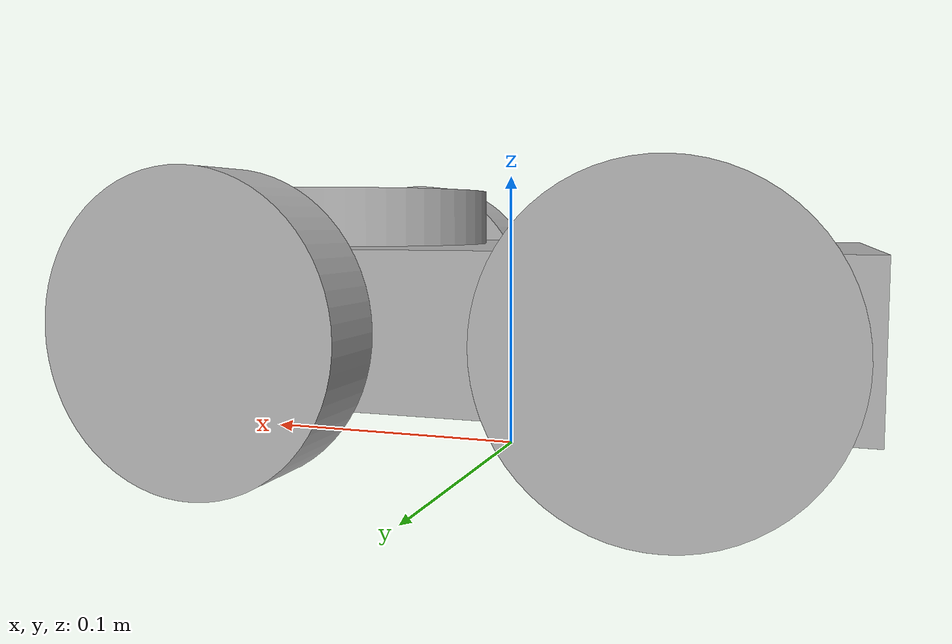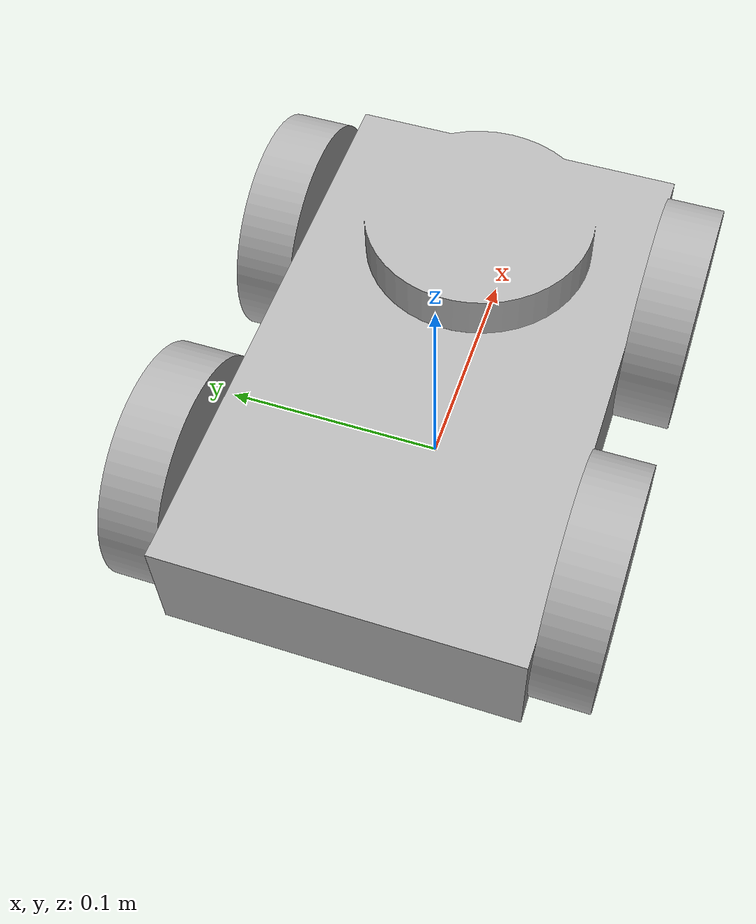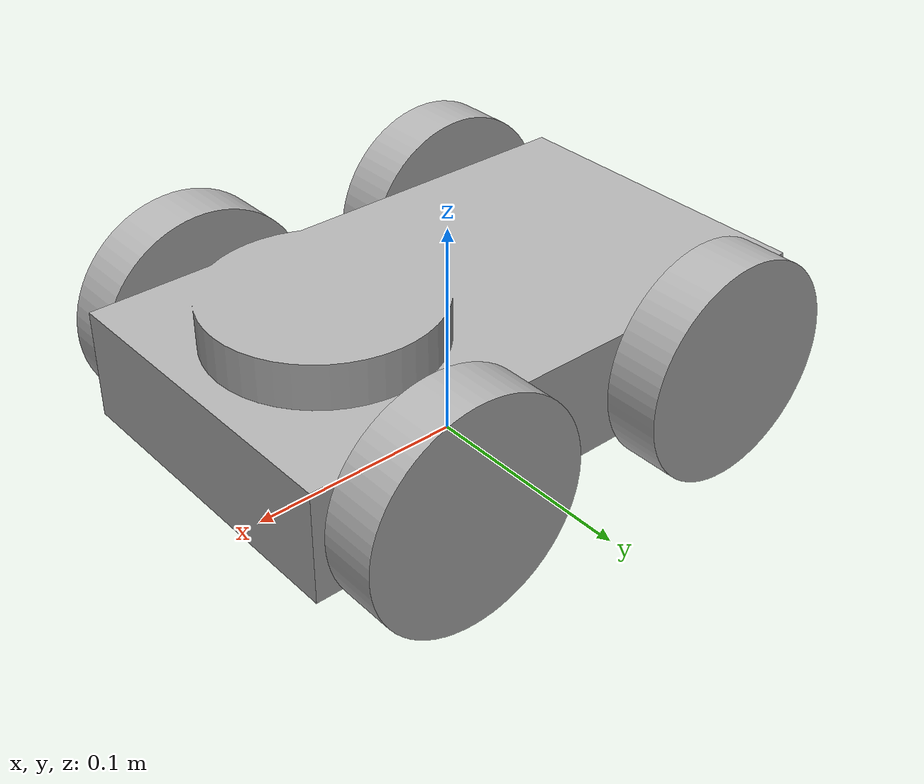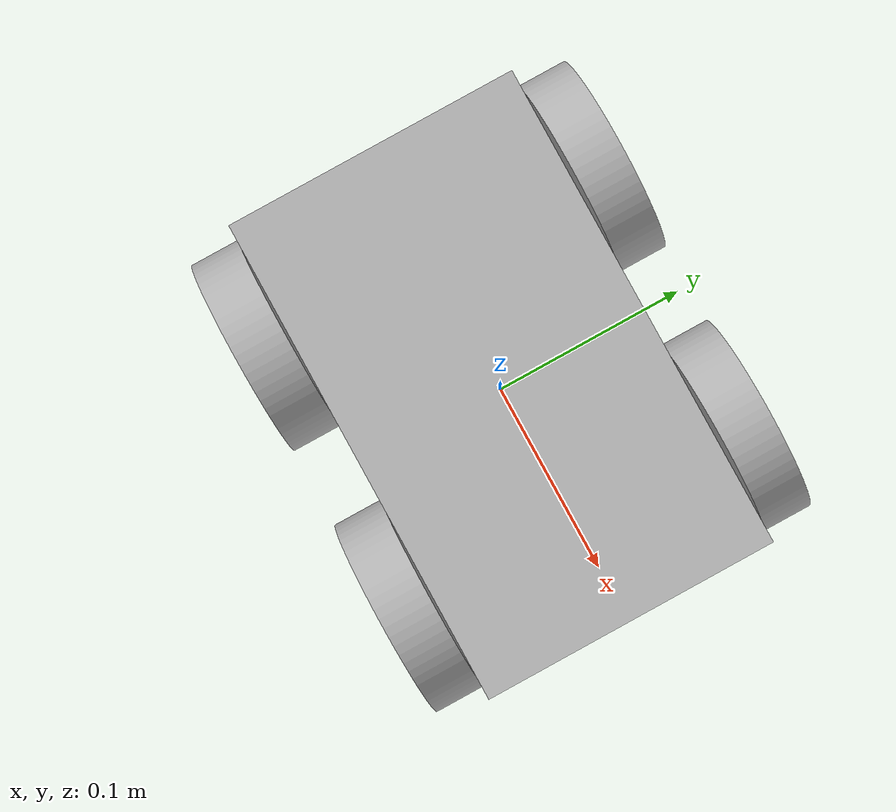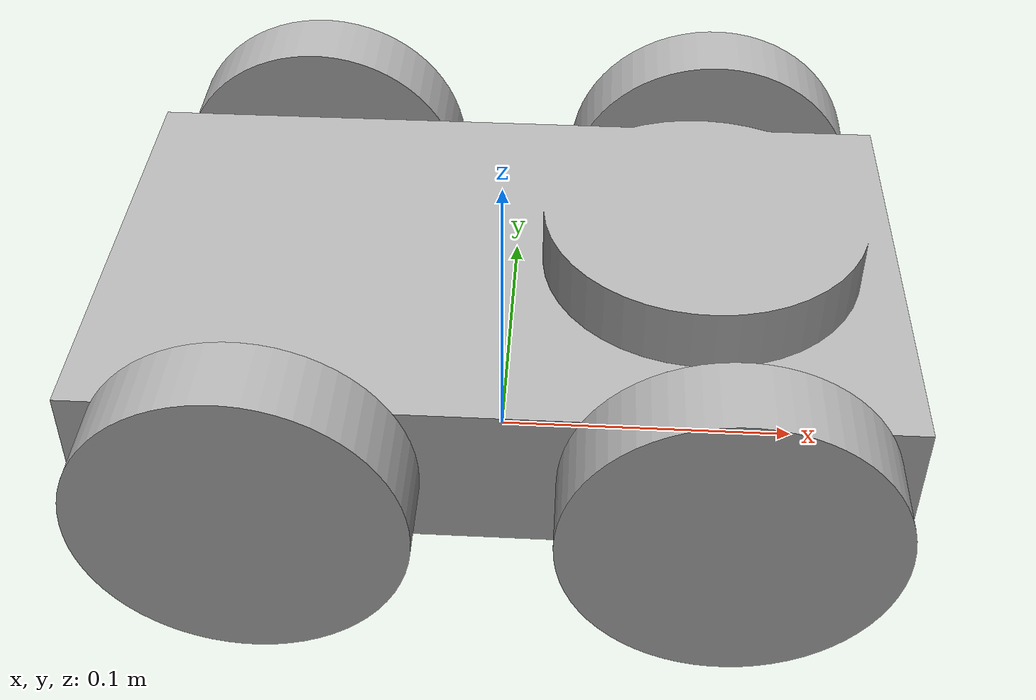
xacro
<?xml version="1.0" ?>
<robot name="penny" xmlns:xacro="http://www.ros.org/wiki/xacro">

<xacro:include filename="$(find penny_description)/urdf/materials.xacro" />
<xacro:include filename="$(find penny_description)/urdf/penny.trans" />
<xacro:include filename="$(find penny_description)/urdf/penny.gazebo" />
<link name="base_link">
  <inertial>
    <origin xyz="-0.008301067405089037 -0.027700282468826398 0.038018828376215355" rpy="0 0 0"/>
    <mass value="16.24776314450215"/>
    <inertia ixx="0.035037" iyy="0.087915" izz="0.113901" ixy="0.0" iyz="-0.0" ixz="-0.002502"/>
  </inertial>
  <visual>
    <origin xyz="0 0 0" rpy="0 0 0"/>
    <geometry>
      <mesh filename="package://penny_description/meshes/base_link.stl" scale="0.001 0.001 0.001"/>
    </geometry>
    <material name="silver"/>
  </visual>
  <collision>
    <origin xyz="0 0 0" rpy="0 0 0"/>
    <geometry>
      <mesh filename="package://penny_description/meshes/base_link.stl" scale="0.001 0.001 0.001"/>
    </geometry>
  </collision>
</link>

<link name="fr_wheel_1">
  <inertial>
    <origin xyz="1.0888776555417756e-07 -0.0023742320486585047 -3.913566094249088e-07" rpy="0 0 0"/>
    <mass value="0.17384002948639105"/>
    <inertia ixx="0.000123" iyy="0.000227" izz="0.000123" ixy="-0.0" iyz="-0.0" ixz="0.0"/>
  </inertial>
  <visual>
    <origin xyz="0.083063 -0.0623 -0.035363" rpy="0 0 0"/>
    <geometry>
      <mesh filename="package://penny_description/meshes/fr_wheel_1.stl" scale="0.001 0.001 0.001"/>
    </geometry>
    <material name="silver"/>
  </visual>
  <collision>
    <origin xyz="0.083063 -0.0623 -0.035363" rpy="0 0 0"/>
    <geometry>
      <mesh filename="package://penny_description/meshes/fr_wheel_1.stl" scale="0.001 0.001 0.001"/>
    </geometry>
  </collision>
</link>

<link name="rr_wheel_1">
  <inertial>
    <origin xyz="1.0888780065110293e-07 -0.0023742320486584492 -3.9135660939021433e-07" rpy="0 0 0"/>
    <mass value="0.17384002948639105"/>
    <inertia ixx="0.000123" iyy="0.000227" izz="0.000123" ixy="0.0" iyz="-0.0" ixz="0.0"/>
  </inertial>
  <visual>
    <origin xyz="-0.056937 -0.0623 -0.035363" rpy="0 0 0"/>
    <geometry>
      <mesh filename="package://penny_description/meshes/rr_wheel_1.stl" scale="0.001 0.001 0.001"/>
    </geometry>
    <material name="silver"/>
  </visual>
  <collision>
    <origin xyz="-0.056937 -0.0623 -0.035363" rpy="0 0 0"/>
    <geometry>
      <mesh filename="package://penny_description/meshes/rr_wheel_1.stl" scale="0.001 0.001 0.001"/>
    </geometry>
  </collision>
</link>

<link name="fl_wheel_1">
  <inertial>
    <origin xyz="1.0888773914474736e-07 0.002373667111005631 -3.913566094318477e-07" rpy="0 0 0"/>
    <mass value="0.17384002948639088"/>
    <inertia ixx="0.000123" iyy="0.000227" izz="0.000123" ixy="0.0" iyz="-0.0" ixz="0.0"/>
  </inertial>
  <visual>
    <origin xyz="0.083063 0.1177 -0.035363" rpy="0 0 0"/>
    <geometry>
      <mesh filename="package://penny_description/meshes/fl_wheel_1.stl" scale="0.001 0.001 0.001"/>
    </geometry>
    <material name="silver"/>
  </visual>
  <collision>
    <origin xyz="0.083063 0.1177 -0.035363" rpy="0 0 0"/>
    <geometry>
      <mesh filename="package://penny_description/meshes/fl_wheel_1.stl" scale="0.001 0.001 0.001"/>
    </geometry>
  </collision>
</link>

<link name="rl_wheel_1">
  <inertial>
    <origin xyz="1.088878269842053e-07 0.0023736671110056867 -3.9135660939021433e-07" rpy="0 0 0"/>
    <mass value="0.17384002948639088"/>
    <inertia ixx="0.000123" iyy="0.000227" izz="0.000123" ixy="0.0" iyz="0.0" ixz="0.0"/>
  </inertial>
  <visual>
    <origin xyz="-0.056937 0.1177 -0.035363" rpy="0 0 0"/>
    <geometry>
      <mesh filename="package://penny_description/meshes/rl_wheel_1.stl" scale="0.001 0.001 0.001"/>
    </geometry>
    <material name="silver"/>
  </visual>
  <collision>
    <origin xyz="-0.056937 0.1177 -0.035363" rpy="0 0 0"/>
    <geometry>
      <mesh filename="package://penny_description/meshes/rl_wheel_1.stl" scale="0.001 0.001 0.001"/>
    </geometry>
  </collision>
</link>

<joint name="fr_wheel" type="continuous">
  <origin xyz="-0.083063 0.0623 0.035363" rpy="0 0 0"/>
  <parent link="base_link"/>
  <child link="fr_wheel_1"/>
  <axis xyz="0.0 1.0 -0.0"/>
</joint>

<joint name="rr_wheel" type="continuous">
  <origin xyz="0.056937 0.0623 0.035363" rpy="0 0 0"/>
  <parent link="base_link"/>
  <child link="rr_wheel_1"/>
  <axis xyz="0.0 1.0 -0.0"/>
</joint>

<joint name="fl_wheel" type="continuous">
  <origin xyz="-0.083063 -0.1177 0.035363" rpy="0 0 0"/>
  <parent link="base_link"/>
  <child link="fl_wheel_1"/>
  <axis xyz="-0.0 -1.0 0.0"/>
</joint>

<joint name="rl_wheel" type="continuous">
  <origin xyz="0.056937 -0.1177 0.035363" rpy="0 0 0"/>
  <parent link="base_link"/>
  <child link="rl_wheel_1"/>
  <axis xyz="-0.0 -1.0 0.0"/>
</joint>

</robot>

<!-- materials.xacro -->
<robot name="penny" xmlns:xacro="http://www.ros.org/wiki/xacro" >

<material name="silver">
  <color rgba="0.700 0.700 0.700 1.000"/>
</material>

</robot>
